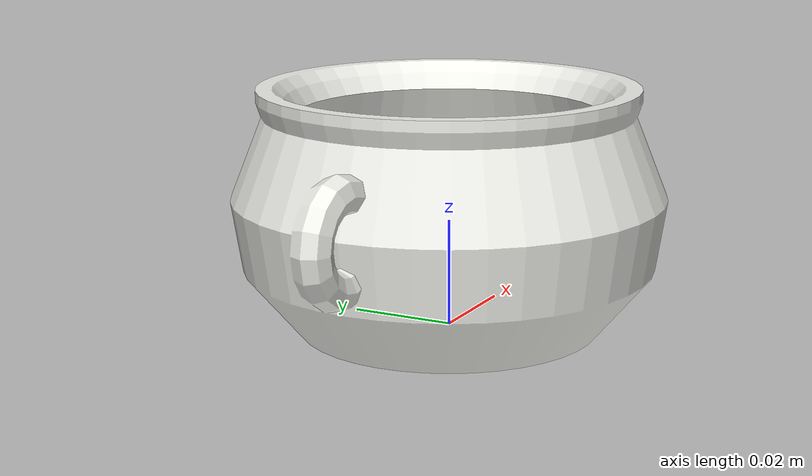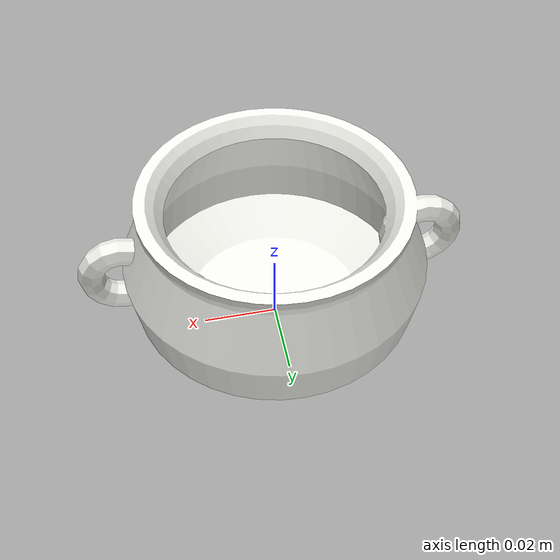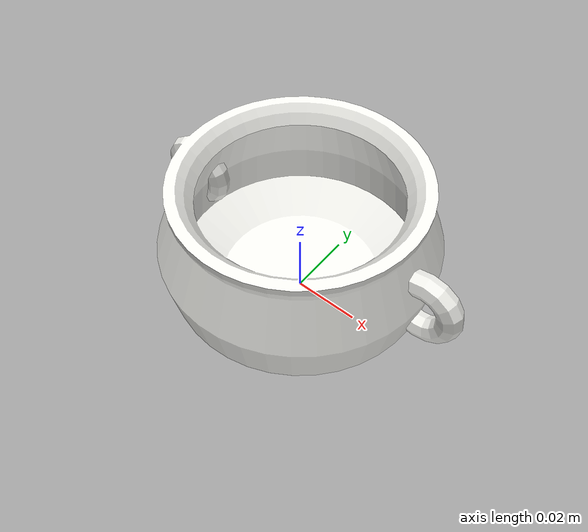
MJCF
<mujoco model="SugarBowl">
  <default>
    <default class="visual">
      <geom group="2" type="mesh" contype="0" conaffinity="0"/>
    </default>
    <default class="collision">
      <geom group="3" type="mesh"/>
    </default>
  </default>
  <asset>
    <material name="Porcelain_White" specular="0.5" shininess="0.672400024" rgba="0.940000 0.940000 0.920000 1.000000"/>
    <mesh file="SugarBowl.obj"/>
    <mesh file="SugarBowl_collision_0.obj"/>
    <mesh file="SugarBowl_collision_1.obj"/>
    <mesh file="SugarBowl_collision_2.obj"/>
    <mesh file="SugarBowl_collision_3.obj"/>
    <mesh file="SugarBowl_collision_4.obj"/>
    <mesh file="SugarBowl_collision_5.obj"/>
    <mesh file="SugarBowl_collision_6.obj"/>
    <mesh file="SugarBowl_collision_7.obj"/>
    <mesh file="SugarBowl_collision_8.obj"/>
    <mesh file="SugarBowl_collision_9.obj"/>
    <mesh file="SugarBowl_collision_10.obj"/>
    <mesh file="SugarBowl_collision_11.obj"/>
    <mesh file="SugarBowl_collision_12.obj"/>
    <mesh file="SugarBowl_collision_13.obj"/>
    <mesh file="SugarBowl_collision_14.obj"/>
    <mesh file="SugarBowl_collision_15.obj"/>
  </asset>
  <worldbody>
    <body name="SugarBowl">
      <geom material="Porcelain_White" mesh="SugarBowl" class="visual"/>
      <geom mesh="SugarBowl_collision_0" rgba="0.593397901965558 0.6643668152775772 0.8459374964510618 1" class="collision"/>
      <geom mesh="SugarBowl_collision_1" rgba="0.5663013836719292 0.2626974354309085 0.8744073167513885 1" class="collision"/>
      <geom mesh="SugarBowl_collision_2" rgba="0.05289871914225297 0.2809435453892005 0.5102960784021918 1" class="collision"/>
      <geom mesh="SugarBowl_collision_3" rgba="0.908833309878532 0.6765603660819093 0.9744365275380434 1" class="collision"/>
      <geom mesh="SugarBowl_collision_4" rgba="0.7963229779222315 0.7167878017498931 0.2697997753013802 1" class="collision"/>
      <geom mesh="SugarBowl_collision_5" rgba="0.12516574675190262 0.13791700086794545 0.9678781792133082 1" class="collision"/>
      <geom mesh="SugarBowl_collision_6" rgba="0.13069923893181634 0.8516972532321845 0.07852585526095068 1" class="collision"/>
      <geom mesh="SugarBowl_collision_7" rgba="0.006824091466276161 0.9009168283906712 0.6950404510101991 1" class="collision"/>
      <geom mesh="SugarBowl_collision_8" rgba="0.6590025701484551 0.9765097961979917 0.8540726463695484 1" class="collision"/>
      <geom mesh="SugarBowl_collision_9" rgba="0.8027000125042432 0.3021712981229455 0.2691080252168586 1" class="collision"/>
      <geom mesh="SugarBowl_collision_10" rgba="0.9762441363169184 0.27205035622444773 0.0819539308532542 1" class="collision"/>
      <geom mesh="SugarBowl_collision_11" rgba="0.06523504918878364 0.8283464739820058 0.08390804725163559 1" class="collision"/>
      <geom mesh="SugarBowl_collision_12" rgba="0.3166833855185388 0.9389058522000719 0.5633430564553524 1" class="collision"/>
      <geom mesh="SugarBowl_collision_13" rgba="0.7211389823622046 0.8910802095228674 0.7787104506943263 1" class="collision"/>
      <geom mesh="SugarBowl_collision_14" rgba="0.24433418673733764 0.9891127553968029 0.18086065965741216 1" class="collision"/>
      <geom mesh="SugarBowl_collision_15" rgba="0.9111108125879154 0.7107344560841955 0.5548379964879578 1" class="collision"/>
    </body>
  </worldbody>
</mujoco>
